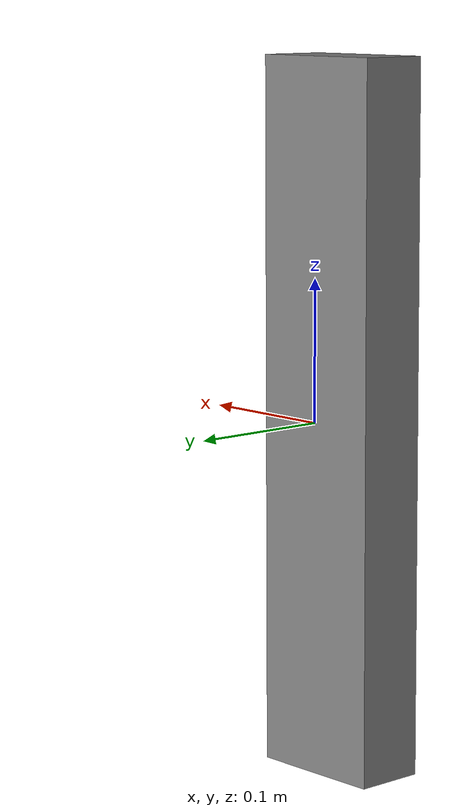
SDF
<?xml version="1.0"?>
<sdf version="1.4">
<model name="ground_1">
  <static>1</static>
  <pose>0 -0.025 0 0 0 0</pose>
  <link name="ground">
    <collision>
      <geometry>
        <box>
          <size>0.1 0.05 0.5</size>
        </box>
      </geometry>
    </collision>
    <visual>
      <geometry>
        <box>
          <size>0.1 0.05 0.5</size>
        </box>
      </geometry>
      <material>
        <diffuse>0.5 0.5 0.5 1.0</diffuse>
      </material>
    </visual>
  </link>
</model>
</sdf>
